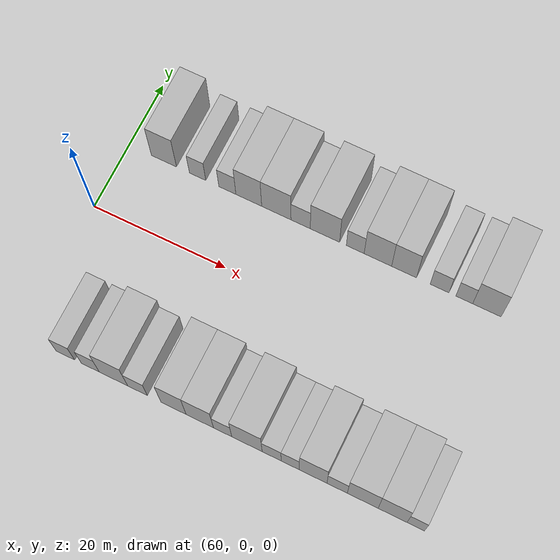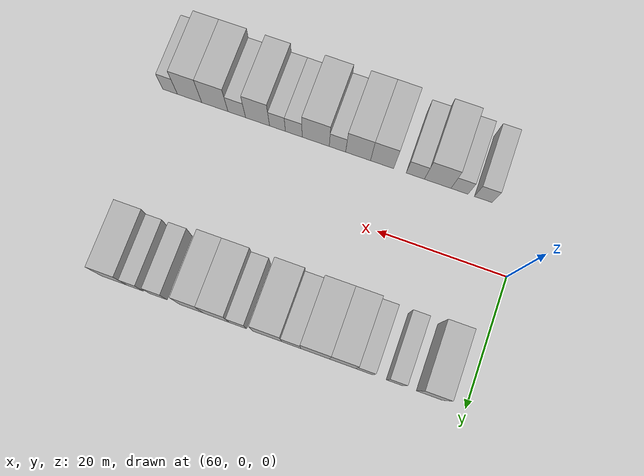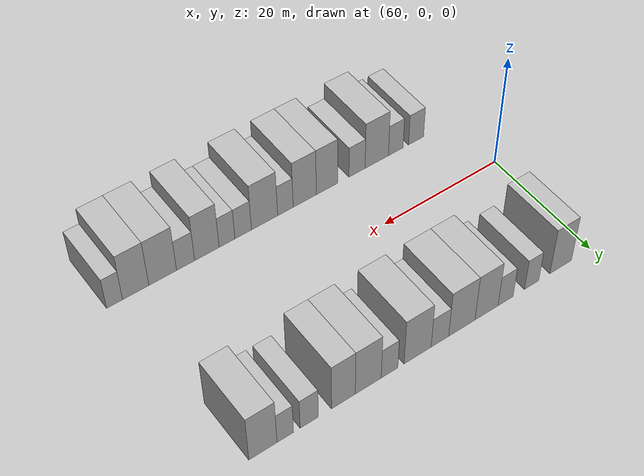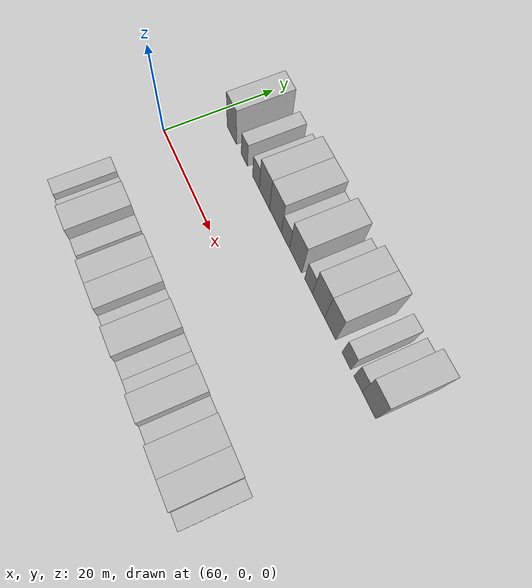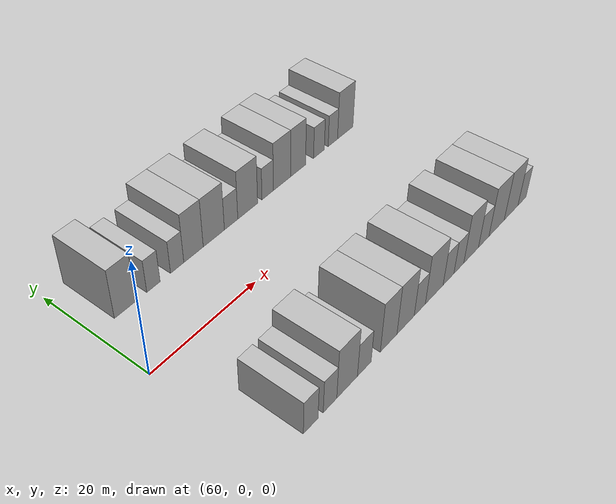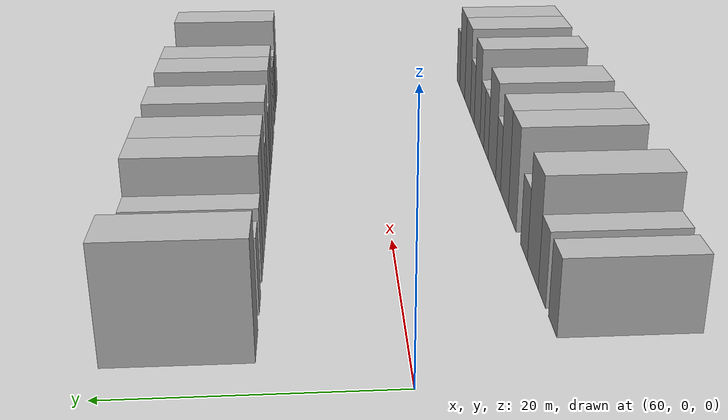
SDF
<sdf version="1.6">
 <world name="default">
  <model name="building_14">
   <static>1</static>
   <pose>65.4110 15.0000 0 0.000000 0.000000 1.570796</pose>
   <link name="link">
    <pose>0 0 4.50 0 0 0</pose>
    <collision name="collision"><geometry><box><size>10.0000 3.8870 9.0000</size></box></geometry></collision>
    <visual name="visual">
     <cast_shadows>0</cast_shadows>
     <geometry><box><size>10.0000 3.8870 9.0000</size></box></geometry>
     <material>
      <script>
       <uri>model://HANNAS_wall/materials/scripts</uri>
       <uri>model://HANNAS_wall/materials/textures</uri>
       <name>vrc/HANNAS_wall</name>
      </script>
     </material>
    </visual>
   </link>
  </model>
  <model name="building_15">
   <static>1</static>
   <pose>70.6132 15.0000 0 0.000000 0.000000 1.570796</pose>
   <link name="link">
    <pose>0 0 3.00 0 0 0</pose>
    <collision name="collision"><geometry><box><size>10.0000 2.5174 6.0000</size></box></geometry></collision>
    <visual name="visual">
     <cast_shadows>0</cast_shadows>
     <geometry><box><size>10.0000 2.5174 6.0000</size></box></geometry>
     <material>
      <script>
       <uri>model://HANNAS_wall/materials/scripts</uri>
       <uri>model://HANNAS_wall/materials/textures</uri>
       <name>vrc/HANNAS_wall</name>
      </script>
     </material>
    </visual>
   </link>
  </model>
  <model name="building_16">
   <static>1</static>
   <pose>75.1780 15.0000 0 0.000000 0.000000 1.570796</pose>
   <link name="link">
    <pose>0 0 3.00 0 0 0</pose>
    <collision name="collision"><geometry><box><size>10.0000 2.6121 6.0000</size></box></geometry></collision>
    <visual name="visual">
     <cast_shadows>0</cast_shadows>
     <geometry><box><size>10.0000 2.6121 6.0000</size></box></geometry>
     <material>
      <script>
       <uri>model://HANNAS_wall/materials/scripts</uri>
       <uri>model://HANNAS_wall/materials/textures</uri>
       <name>vrc/HANNAS_wall</name>
      </script>
     </material>
    </visual>
   </link>
  </model>
  <model name="building_17">
   <static>1</static>
   <pose>78.4476 15.0000 0 0.000000 0.000000 1.570796</pose>
   <link name="link">
    <pose>0 0 4.50 0 0 0</pose>
    <collision name="collision"><geometry><box><size>10.0000 3.9272 9.0000</size></box></geometry></collision>
    <visual name="visual">
     <cast_shadows>0</cast_shadows>
     <geometry><box><size>10.0000 3.9272 9.0000</size></box></geometry>
     <material>
      <script>
       <uri>model://HANNAS_wall/materials/scripts</uri>
       <uri>model://HANNAS_wall/materials/textures</uri>
       <name>vrc/HANNAS_wall</name>
      </script>
     </material>
    </visual>
   </link>
  </model>
  <model name="building_18">
   <static>1</static>
   <pose>82.6273 15.0000 0 0.000000 0.000000 1.570796</pose>
   <link name="link">
    <pose>0 0 4.50 0 0 0</pose>
    <collision name="collision"><geometry><box><size>10.0000 4.4322 9.0000</size></box></geometry></collision>
    <visual name="visual">
     <cast_shadows>0</cast_shadows>
     <geometry><box><size>10.0000 4.4322 9.0000</size></box></geometry>
     <material>
      <script>
       <uri>model://HANNAS_wall/materials/scripts</uri>
       <uri>model://HANNAS_wall/materials/textures</uri>
       <name>vrc/HANNAS_wall</name>
      </script>
     </material>
    </visual>
   </link>
  </model>
  <model name="building_19">
   <static>1</static>
   <pose>86.2931 15.0000 0 0.000000 0.000000 1.570796</pose>
   <link name="link">
    <pose>0 0 3.00 0 0 0</pose>
    <collision name="collision"><geometry><box><size>10.0000 2.8995 6.0000</size></box></geometry></collision>
    <visual name="visual">
     <cast_shadows>0</cast_shadows>
     <geometry><box><size>10.0000 2.8995 6.0000</size></box></geometry>
     <material>
      <script>
       <uri>model://HANNAS_wall/materials/scripts</uri>
       <uri>model://HANNAS_wall/materials/textures</uri>
       <name>vrc/HANNAS_wall</name>
      </script>
     </material>
    </visual>
   </link>
  </model>
  <model name="building_20">
   <static>1</static>
   <pose>89.9431 15.0000 0 0.000000 0.000000 1.570796</pose>
   <link name="link">
    <pose>0 0 4.50 0 0 0</pose>
    <collision name="collision"><geometry><box><size>10.0000 4.4005 9.0000</size></box></geometry></collision>
    <visual name="visual">
     <cast_shadows>0</cast_shadows>
     <geometry><box><size>10.0000 4.4005 9.0000</size></box></geometry>
     <material>
      <script>
       <uri>model://HANNAS_wall/materials/scripts</uri>
       <uri>model://HANNAS_wall/materials/textures</uri>
       <name>vrc/HANNAS_wall</name>
      </script>
     </material>
    </visual>
   </link>
  </model>
  <model name="building_21">
   <static>1</static>
   <pose>94.4690 15.0000 0 0.000000 0.000000 1.570796</pose>
   <link name="link">
    <pose>0 0 3.00 0 0 0</pose>
    <collision name="collision"><geometry><box><size>10.0000 2.6513 6.0000</size></box></geometry></collision>
    <visual name="visual">
     <cast_shadows>0</cast_shadows>
     <geometry><box><size>10.0000 2.6513 6.0000</size></box></geometry>
     <material>
      <script>
       <uri>model://HANNAS_wall/materials/scripts</uri>
       <uri>model://HANNAS_wall/materials/textures</uri>
       <name>vrc/HANNAS_wall</name>
      </script>
     </material>
    </visual>
   </link>
  </model>
  <model name="building_22">
   <static>1</static>
   <pose>97.8308 15.0000 0 0.000000 0.000000 1.570796</pose>
   <link name="link">
    <pose>0 0 4.50 0 0 0</pose>
    <collision name="collision"><geometry><box><size>10.0000 4.0723 9.0000</size></box></geometry></collision>
    <visual name="visual">
     <cast_shadows>0</cast_shadows>
     <geometry><box><size>10.0000 4.0723 9.0000</size></box></geometry>
     <material>
      <script>
       <uri>model://HANNAS_wall/materials/scripts</uri>
       <uri>model://HANNAS_wall/materials/textures</uri>
       <name>vrc/HANNAS_wall</name>
      </script>
     </material>
    </visual>
   </link>
  </model>
  <model name="building_23">
   <static>1</static>
   <pose>101.7011 15.0000 0 0.000000 0.000000 1.570796</pose>
   <link name="link">
    <pose>0 0 4.50 0 0 0</pose>
    <collision name="collision"><geometry><box><size>10.0000 3.6684 9.0000</size></box></geometry></collision>
    <visual name="visual">
     <cast_shadows>0</cast_shadows>
     <geometry><box><size>10.0000 3.6684 9.0000</size></box></geometry>
     <material>
      <script>
       <uri>model://HANNAS_wall/materials/scripts</uri>
       <uri>model://HANNAS_wall/materials/textures</uri>
       <name>vrc/HANNAS_wall</name>
      </script>
     </material>
    </visual>
   </link>
  </model>
  <model name="building_24">
   <static>1</static>
   <pose>106.9101 15.0000 0 0.000000 0.000000 1.570796</pose>
   <link name="link">
    <pose>0 0 3.00 0 0 0</pose>
    <collision name="collision"><geometry><box><size>10.0000 2.7494 6.0000</size></box></geometry></collision>
    <visual name="visual">
     <cast_shadows>0</cast_shadows>
     <geometry><box><size>10.0000 2.7494 6.0000</size></box></geometry>
     <material>
      <script>
       <uri>model://HANNAS_wall/materials/scripts</uri>
       <uri>model://HANNAS_wall/materials/textures</uri>
       <name>vrc/HANNAS_wall</name>
      </script>
     </material>
    </visual>
   </link>
  </model>
  <model name="building_25">
   <static>1</static>
   <pose>110.5071 15.0000 0 0.000000 0.000000 1.570796</pose>
   <link name="link">
    <pose>0 0 3.00 0 0 0</pose>
    <collision name="collision"><geometry><box><size>10.0000 2.4445 6.0000</size></box></geometry></collision>
    <visual name="visual">
     <cast_shadows>0</cast_shadows>
     <geometry><box><size>10.0000 2.4445 6.0000</size></box></geometry>
     <material>
      <script>
       <uri>model://HANNAS_wall/materials/scripts</uri>
       <uri>model://HANNAS_wall/materials/textures</uri>
       <name>vrc/HANNAS_wall</name>
      </script>
     </material>
    </visual>
   </link>
  </model>
  <model name="building_26">
   <static>1</static>
   <pose>113.7879 15.0000 0 0.000000 0.000000 1.570796</pose>
   <link name="link">
    <pose>0 0 4.50 0 0 0</pose>
    <collision name="collision"><geometry><box><size>10.0000 4.1172 9.0000</size></box></geometry></collision>
    <visual name="visual">
     <cast_shadows>0</cast_shadows>
     <geometry><box><size>10.0000 4.1172 9.0000</size></box></geometry>
     <material>
      <script>
       <uri>model://HANNAS_wall/materials/scripts</uri>
       <uri>model://HANNAS_wall/materials/textures</uri>
       <name>vrc/HANNAS_wall</name>
      </script>
     </material>
    </visual>
   </link>
  </model>
  <model name="building_69">
   <static>1</static>
   <pose>66.6347 -15.0000 0 0.000000 0.000000 1.570796</pose>
   <link name="link">
    <pose>0 0 3.00 0 0 0</pose>
    <collision name="collision"><geometry><box><size>10.0000 2.7842 6.0000</size></box></geometry></collision>
    <visual name="visual">
     <cast_shadows>0</cast_shadows>
     <geometry><box><size>10.0000 2.7842 6.0000</size></box></geometry>
     <material>
      <script>
       <uri>model://HANNAS_wall/materials/scripts</uri>
       <uri>model://HANNAS_wall/materials/textures</uri>
       <name>vrc/HANNAS_wall</name>
      </script>
     </material>
    </visual>
   </link>
  </model>
  <model name="building_70">
   <static>1</static>
   <pose>70.3638 -15.0000 0 0.000000 0.000000 1.570796</pose>
   <link name="link">
    <pose>0 0 3.00 0 0 0</pose>
    <collision name="collision"><geometry><box><size>10.0000 2.6740 6.0000</size></box></geometry></collision>
    <visual name="visual">
     <cast_shadows>0</cast_shadows>
     <geometry><box><size>10.0000 2.6740 6.0000</size></box></geometry>
     <material>
      <script>
       <uri>model://HANNAS_wall/materials/scripts</uri>
       <uri>model://HANNAS_wall/materials/textures</uri>
       <name>vrc/HANNAS_wall</name>
      </script>
     </material>
    </visual>
   </link>
  </model>
  <model name="building_71">
   <static>1</static>
   <pose>73.8072 -15.0000 0 0.000000 0.000000 1.570796</pose>
   <link name="link">
    <pose>0 0 4.50 0 0 0</pose>
    <collision name="collision"><geometry><box><size>10.0000 4.2128 9.0000</size></box></geometry></collision>
    <visual name="visual">
     <cast_shadows>0</cast_shadows>
     <geometry><box><size>10.0000 4.2128 9.0000</size></box></geometry>
     <material>
      <script>
       <uri>model://HANNAS_wall/materials/scripts</uri>
       <uri>model://HANNAS_wall/materials/textures</uri>
       <name>vrc/HANNAS_wall</name>
      </script>
     </material>
    </visual>
   </link>
  </model>
  <model name="building_72">
   <static>1</static>
   <pose>77.3588 -15.0000 0 0.000000 0.000000 1.570796</pose>
   <link name="link">
    <pose>0 0 3.00 0 0 0</pose>
    <collision name="collision"><geometry><box><size>10.0000 2.8905 6.0000</size></box></geometry></collision>
    <visual name="visual">
     <cast_shadows>0</cast_shadows>
     <geometry><box><size>10.0000 2.8905 6.0000</size></box></geometry>
     <material>
      <script>
       <uri>model://HANNAS_wall/materials/scripts</uri>
       <uri>model://HANNAS_wall/materials/textures</uri>
       <name>vrc/HANNAS_wall</name>
      </script>
     </material>
    </visual>
   </link>
  </model>
  <model name="building_73">
   <static>1</static>
   <pose>82.6483 -15.0000 0 0.000000 0.000000 1.570796</pose>
   <link name="link">
    <pose>0 0 4.50 0 0 0</pose>
    <collision name="collision"><geometry><box><size>10.0000 3.6885 9.0000</size></box></geometry></collision>
    <visual name="visual">
     <cast_shadows>0</cast_shadows>
     <geometry><box><size>10.0000 3.6885 9.0000</size></box></geometry>
     <material>
      <script>
       <uri>model://HANNAS_wall/materials/scripts</uri>
       <uri>model://HANNAS_wall/materials/textures</uri>
       <name>vrc/HANNAS_wall</name>
      </script>
     </material>
    </visual>
   </link>
  </model>
  <model name="building_74">
   <static>1</static>
   <pose>86.4869 -15.0000 0 0.000000 0.000000 1.570796</pose>
   <link name="link">
    <pose>0 0 4.50 0 0 0</pose>
    <collision name="collision"><geometry><box><size>10.0000 3.9888 9.0000</size></box></geometry></collision>
    <visual name="visual">
     <cast_shadows>0</cast_shadows>
     <geometry><box><size>10.0000 3.9888 9.0000</size></box></geometry>
     <material>
      <script>
       <uri>model://HANNAS_wall/materials/scripts</uri>
       <uri>model://HANNAS_wall/materials/textures</uri>
       <name>vrc/HANNAS_wall</name>
      </script>
     </material>
    </visual>
   </link>
  </model>
  <model name="building_75">
   <static>1</static>
   <pose>89.8007 -15.0000 0 0.000000 0.000000 1.570796</pose>
   <link name="link">
    <pose>0 0 3.00 0 0 0</pose>
    <collision name="collision"><geometry><box><size>10.0000 2.6387 6.0000</size></box></geometry></collision>
    <visual name="visual">
     <cast_shadows>0</cast_shadows>
     <geometry><box><size>10.0000 2.6387 6.0000</size></box></geometry>
     <material>
      <script>
       <uri>model://HANNAS_wall/materials/scripts</uri>
       <uri>model://HANNAS_wall/materials/textures</uri>
       <name>vrc/HANNAS_wall</name>
      </script>
     </material>
    </visual>
   </link>
  </model>
  <model name="building_76">
   <static>1</static>
   <pose>93.3070 -15.0000 0 0.000000 0.000000 1.570796</pose>
   <link name="link">
    <pose>0 0 4.50 0 0 0</pose>
    <collision name="collision"><geometry><box><size>10.0000 4.3741 9.0000</size></box></geometry></collision>
    <visual name="visual">
     <cast_shadows>0</cast_shadows>
     <geometry><box><size>10.0000 4.3741 9.0000</size></box></geometry>
     <material>
      <script>
       <uri>model://HANNAS_wall/materials/scripts</uri>
       <uri>model://HANNAS_wall/materials/textures</uri>
       <name>vrc/HANNAS_wall</name>
      </script>
     </material>
    </visual>
   </link>
  </model>
  <model name="building_77">
   <static>1</static>
   <pose>96.8554 -15.0000 0 0.000000 0.000000 1.570796</pose>
   <link name="link">
    <pose>0 0 3.00 0 0 0</pose>
    <collision name="collision"><geometry><box><size>10.0000 2.7226 6.0000</size></box></geometry></collision>
    <visual name="visual">
     <cast_shadows>0</cast_shadows>
     <geometry><box><size>10.0000 2.7226 6.0000</size></box></geometry>
     <material>
      <script>
       <uri>model://HANNAS_wall/materials/scripts</uri>
       <uri>model://HANNAS_wall/materials/textures</uri>
       <name>vrc/HANNAS_wall</name>
      </script>
     </material>
    </visual>
   </link>
  </model>
  <model name="building_78">
   <static>1</static>
   <pose>99.5029 -15.0000 0 0.000000 0.000000 1.570796</pose>
   <link name="link">
    <pose>0 0 3.00 0 0 0</pose>
    <collision name="collision"><geometry><box><size>10.0000 2.5725 6.0000</size></box></geometry></collision>
    <visual name="visual">
     <cast_shadows>0</cast_shadows>
     <geometry><box><size>10.0000 2.5725 6.0000</size></box></geometry>
     <material>
      <script>
       <uri>model://HANNAS_wall/materials/scripts</uri>
       <uri>model://HANNAS_wall/materials/textures</uri>
       <name>vrc/HANNAS_wall</name>
      </script>
     </material>
    </visual>
   </link>
  </model>
  <model name="building_79">
   <static>1</static>
   <pose>102.7517 -15.0000 0 0.000000 0.000000 1.570796</pose>
   <link name="link">
    <pose>0 0 4.50 0 0 0</pose>
    <collision name="collision"><geometry><box><size>10.0000 3.9250 9.0000</size></box></geometry></collision>
    <visual name="visual">
     <cast_shadows>0</cast_shadows>
     <geometry><box><size>10.0000 3.9250 9.0000</size></box></geometry>
     <material>
      <script>
       <uri>model://HANNAS_wall/materials/scripts</uri>
       <uri>model://HANNAS_wall/materials/textures</uri>
       <name>vrc/HANNAS_wall</name>
      </script>
     </material>
    </visual>
   </link>
  </model>
  <model name="building_80">
   <static>1</static>
   <pose>106.1517 -15.0000 0 0.000000 0.000000 1.570796</pose>
   <link name="link">
    <pose>0 0 3.00 0 0 0</pose>
    <collision name="collision"><geometry><box><size>10.0000 2.8751 6.0000</size></box></geometry></collision>
    <visual name="visual">
     <cast_shadows>0</cast_shadows>
     <geometry><box><size>10.0000 2.8751 6.0000</size></box></geometry>
     <material>
      <script>
       <uri>model://HANNAS_wall/materials/scripts</uri>
       <uri>model://HANNAS_wall/materials/textures</uri>
       <name>vrc/HANNAS_wall</name>
      </script>
     </material>
    </visual>
   </link>
  </model>
  <model name="building_81">
   <static>1</static>
   <pose>109.7528 -15.0000 0 0.000000 0.000000 1.570796</pose>
   <link name="link">
    <pose>0 0 4.50 0 0 0</pose>
    <collision name="collision"><geometry><box><size>10.0000 4.3271 9.0000</size></box></geometry></collision>
    <visual name="visual">
     <cast_shadows>0</cast_shadows>
     <geometry><box><size>10.0000 4.3271 9.0000</size></box></geometry>
     <material>
      <script>
       <uri>model://HANNAS_wall/materials/scripts</uri>
       <uri>model://HANNAS_wall/materials/textures</uri>
       <name>vrc/HANNAS_wall</name>
      </script>
     </material>
    </visual>
   </link>
  </model>
  <model name="building_82">
   <static>1</static>
   <pose>113.9319 -15.0000 0 0.000000 0.000000 1.570796</pose>
   <link name="link">
    <pose>0 0 4.50 0 0 0</pose>
    <collision name="collision"><geometry><box><size>10.0000 4.0311 9.0000</size></box></geometry></collision>
    <visual name="visual">
     <cast_shadows>0</cast_shadows>
     <geometry><box><size>10.0000 4.0311 9.0000</size></box></geometry>
     <material>
      <script>
       <uri>model://HANNAS_wall/materials/scripts</uri>
       <uri>model://HANNAS_wall/materials/textures</uri>
       <name>vrc/HANNAS_wall</name>
      </script>
     </material>
    </visual>
   </link>
  </model>
  <model name="building_83">
   <static>1</static>
   <pose>117.1591 -15.0000 0 0.000000 0.000000 1.570796</pose>
   <link name="link">
    <pose>0 0 3.00 0 0 0</pose>
    <collision name="collision"><geometry><box><size>10.0000 2.4234 6.0000</size></box></geometry></collision>
    <visual name="visual">
     <cast_shadows>0</cast_shadows>
     <geometry><box><size>10.0000 2.4234 6.0000</size></box></geometry>
     <material>
      <script>
       <uri>model://HANNAS_wall/materials/scripts</uri>
       <uri>model://HANNAS_wall/materials/textures</uri>
       <name>vrc/HANNAS_wall</name>
      </script>
     </material>
    </visual>
   </link>
  </model>
 </world>
</sdf>
